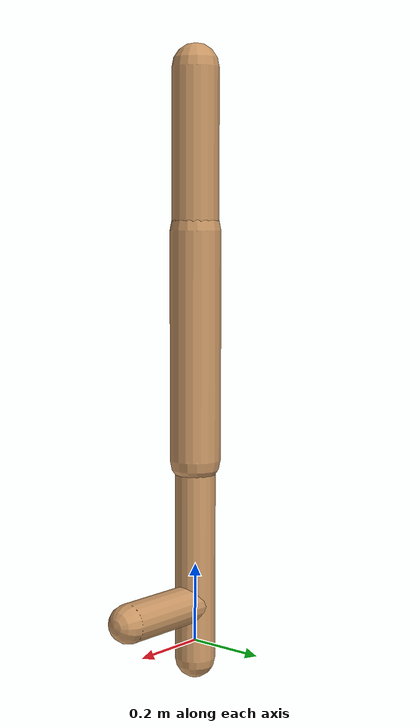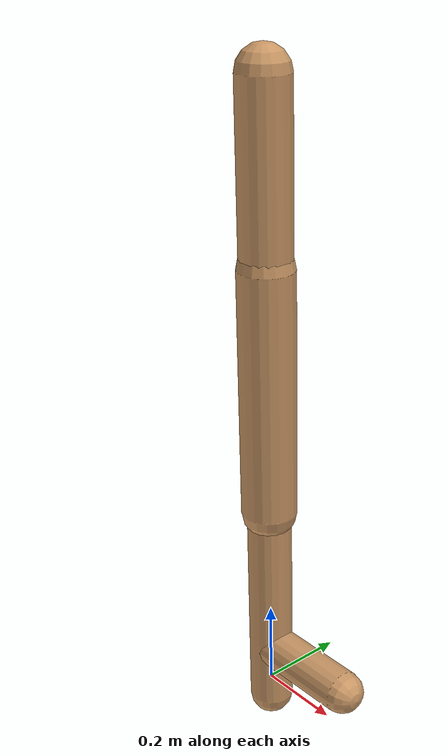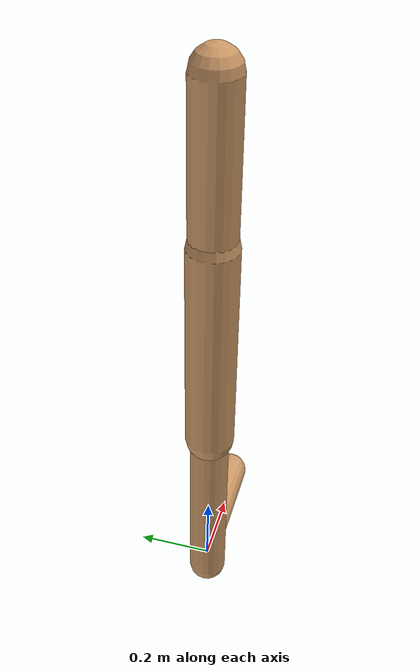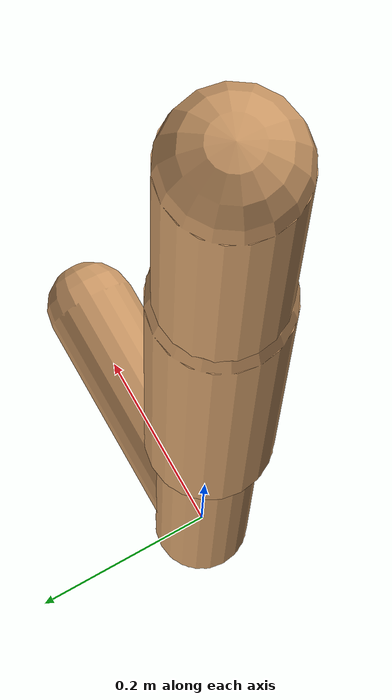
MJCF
<mujoco model="walker2d">
  <compiler angle="degree" coordinate="global" inertiafromgeom="true" />
  <default>
    <joint armature="0.01" damping=".1" limited="true" />
    <geom conaffinity="0" condim="3" contype="1" density="1000" friction="0.8 .1 .1" rgba="0.8 0.6 .4 1" />
  </default>
  <option integrator="RK4" timestep="0.002" />
  <worldbody>

    <body name="torso" pos="0 0 0.2740636256640174">
      <joint armature="0" axis="1 0 0" damping="0" limited="false" name="ignorex" pos="0 0 0" stiffness="0" type="slide" />
      <joint armature="0" axis="0 0 1" damping="0" limited="false" name="ignorez" pos="0 0 0" ref="1.25" stiffness="0" type="slide" />
      <joint armature="0" axis="0 1 0" damping="0" limited="false" name="ignorey" pos="0 0 0" stiffness="0" type="hinge" />
      <geom fromto="0 0 1.45 0 0 1.05" name="torso_geom" size="0.05902450074975329" type="capsule" />
      <body name="thigh">
        <joint axis="0 -1 0" name="thigh_joint" pos="0 0 1.05" range="-150 0" type="hinge" />
        <geom fromto="0.0 0.0 1.05 0.0 0.0 0.47018038784336014" name="thigh_geom" size="0.06432794195920323" type="capsule" />
        <body name="leg" pos="0.0 0.0 -0.12981961215663984">
          <joint axis="0 -1 0" name="leg_joint" pos="0 0 0.6" range="-150 0" type="hinge" />
          <geom fromto="0.0 0.0 0.6 0.0 0.0 -0.044244013507377555" name="leg_geom" size="0.05146235356736258" type="capsule" />
          <body name="foot" pos="0.0 0.0 -0.14424401350737756">
            <joint axis="0 -1 0" name="foot_joint" pos="0 0 0.1" range="-45 45" type="hinge" />
            <geom fromto="-0.0 0.0 0.09999999999999999 0.24997501394491645 0.0 0.09999999999999999" name="foot_geom" size="0.04931392545614774" type="capsule" />
          </body>
        </body>
      </body>

      <body name="thigh_left">
        <joint axis="0 -1 0" name="thigh_left_joint" pos="0 0 1.05" range="-150 0" type="hinge" />
        <geom fromto="0.0 0.0 1.05 0.0 0.0 0.47018038784336014" name="thigh_left_geom" rgba=".7 .3 .6 1" size="0.06432794195920323" type="capsule" />
        <body name="leg_left" pos="0.0 0.0 -0.12981961215663984">
          <joint axis="0 -1 0" name="leg_left_joint" pos="0 0 0.6" range="-150 0" type="hinge" />
          <geom fromto="0.0 0.0 0.6 0.0 0.0 -0.044244013507377555" name="leg_left_geom" rgba=".7 .3 .6 1" size="0.05146235356736258" type="capsule" />
          <body name="foot_left" pos="0.0 0.0 -0.14424401350737756">
            <joint axis="0 -1 0" name="foot_left_joint" pos="0 0 0.1" range="-45 45" type="hinge" />
            <geom fromto="-0.0 0.0 0.09999999999999999 0.24997501394491645 0.0 0.09999999999999999" name="foot_left_geom" rgba=".7 .3 .6 1" size="0.04931392545614774" type="capsule" />
          </body>
        </body>
      </body>
    </body>
  </worldbody>
  <actuator>

    <motor ctrllimited="true" ctrlrange="-1.0 1.0" gear="100" joint="thigh_joint" />
    <motor ctrllimited="true" ctrlrange="-1.0 1.0" gear="100" joint="leg_joint" />
    <motor ctrllimited="true" ctrlrange="-1.0 1.0" gear="100" joint="foot_joint" />
    <motor ctrllimited="true" ctrlrange="-1.0 1.0" gear="100" joint="thigh_left_joint" />
    <motor ctrllimited="true" ctrlrange="-1.0 1.0" gear="100" joint="leg_left_joint" />
    <motor ctrllimited="true" ctrlrange="-1.0 1.0" gear="100" joint="foot_left_joint" />

  </actuator>
</mujoco>
